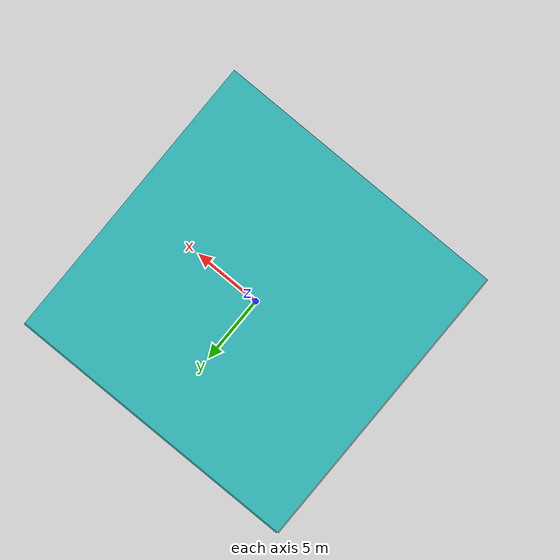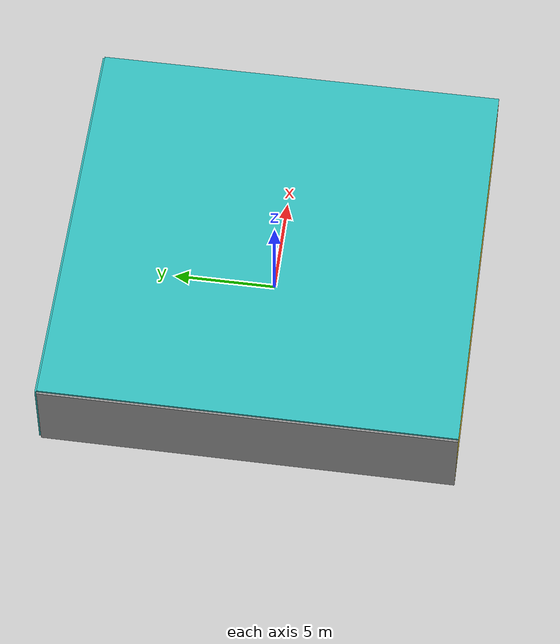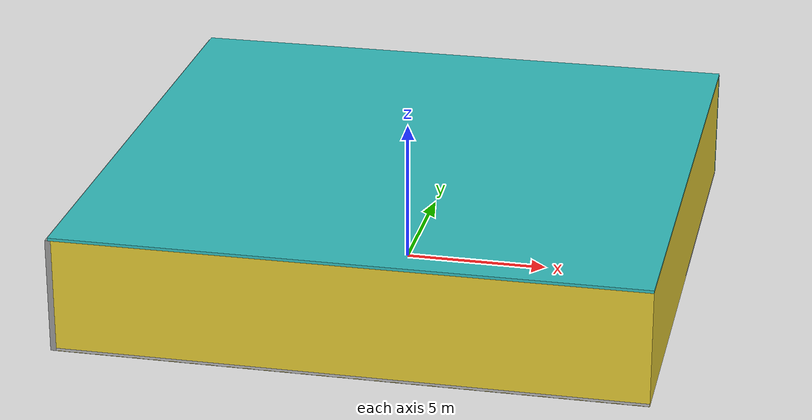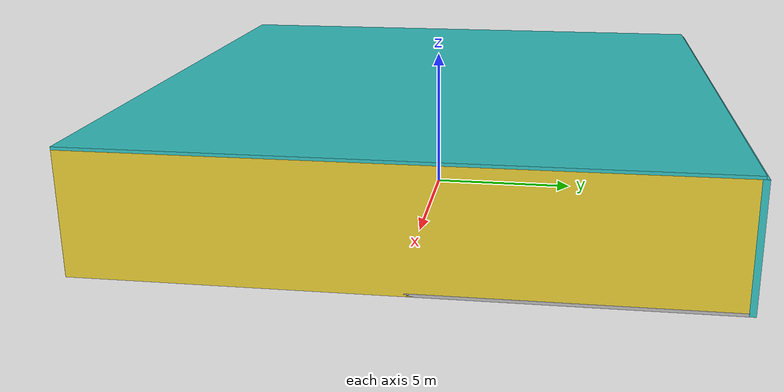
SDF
<sdf version="1.4">
 <world name="default">
  <physics type="ode">
   <max_step_size>0.001</max_step_size>
   <real_time_factor>1</real_time_factor>
   <real_time_update_rate>1000</real_time_update_rate>
   <gravity>0 0 -9.8</gravity>
  </physics>
  <scene><ambient>0.4 0.4 0.4 1</ambient><background>0.7 0.7 0.7 1</background><shadows>1</shadows></scene>
  <model name="Surrounding">
   <static>1</static>
   <link name="Ceiling">
    <collision name="Ceiling_Collision"><geometry><box><size>20 20 0.1</size></box></geometry></collision>
    <visual name="Ceiling_Visual">
     <geometry><box><size>20 20 0.1</size></box></geometry>
     <material>
      <script><uri>file://media/materials/scripts/gazebo.material</uri><name>Gazebo/TurquoiseGlow</name></script>
     </material>
    </visual>
    <pose>0 0 4.05 0 0 0</pose>
   </link>
   <link name="Wall_South">
    <collision name="Wall_South_Collision">
     <geometry><box><size>20 0 4</size></box></geometry>
     <pose>0 0 2 0 -0 0</pose>
    </collision>
    <visual name="Wall_South_Visual">
     <pose>0 0 2 0 -0 0</pose>
     <geometry><box><size>20 0 4</size></box></geometry>
     <material>
      <script><uri>file://media/materials/scripts/gazebo.material</uri><name>Gazebo/ZincYellow</name></script>
     </material>
    </visual>
    <velocity_decay><linear>0</linear><angular>0</angular></velocity_decay>
    <pose>0 -10 0 0 -0 0</pose>
   </link>
   <link name="Wall_East">
    <collision name="Wall_21_Collision">
     <geometry><box><size>20 0 4</size></box></geometry>
     <pose>0 0 2 0 -0 0</pose>
    </collision>
    <visual name="Wall_21_Visual">
     <pose>0 0 2 0 -0 0</pose>
     <geometry><box><size>20 0 4</size></box></geometry>
     <material>
      <script><uri>file://media/materials/scripts/gazebo.material</uri><name>Gazebo/ZincYellow</name></script>
     </material>
    </visual>
    <velocity_decay><linear>0</linear><angular>0</angular></velocity_decay>
    <pose>10 0 0 0 -0 1.5708</pose>
   </link>
   <link name="Wall_North">
    <collision name="Wall_22_Collision">
     <geometry><box><size>20 0.2 4</size></box></geometry>
     <pose>0 0 2 0 -0 0</pose>
    </collision>
    <visual name="Wall_22_Visual">
     <pose>0 0 2 0 -0 0</pose>
     <geometry><box><size>20 0.2 4</size></box></geometry>
     <material>
      <script>
       <uri>file://media/materials/scripts/gazebo.material</uri>
       <name>Gazebo/TurquoiseGlowOutline</name>
      </script>
     </material>
    </visual>
    <velocity_decay><linear>0</linear><angular>0</angular></velocity_decay>
    <pose>0 10 0 0 -0 0</pose>
   </link>
   <link name="Wall_West">
    <collision name="Wall_23_Collision">
     <geometry><box><size>20 0.2 4</size></box></geometry>
     <pose>0 0 2 0 -0 0</pose>
    </collision>
    <visual name="Wall_23_Visual">
     <pose>0 0 2 0 -0 0</pose>
     <geometry><box><size>20 0.2 4</size></box></geometry>
     <material>
      <script><uri>file://media/materials/scripts/gazebo.material</uri><name>Gazebo/Grey</name></script>
     </material>
    </visual>
    <velocity_decay><linear>0</linear><angular>0</angular></velocity_decay>
    <pose>-10 0 0 0 0 -1.5708</pose>
   </link>
   <link name="Ground_link">
    <collision name="collision">
     <pose>0 0 .05 0 -0 0</pose>
     <geometry><box><size>20 20 0.1</size></box></geometry>
    </collision>
    <visual name="visual">
     <pose>0 0 .05 0 -0 0</pose>
     <geometry><box><size>20 20 0.1</size></box></geometry>
     <material>
      <script><uri>file://media/materials/scripts/gazebo.material</uri><name>Gazebo/CloudySky</name></script>
     </material>
    </visual>
   </link>
   <static>1</static>
  </model>
  <spherical_coordinates>
   <surface_model>EARTH_WGS84</surface_model>
   <latitude_deg>0</latitude_deg>
   <longitude_deg>0</longitude_deg>
   <elevation>0</elevation>
   <heading_deg>0</heading_deg>
  </spherical_coordinates>
  <light name="lightball_0" type="diffuse">
   <diffuse>0.8 0.8 0.8 1</diffuse>
   <specular>0.2 0.2 0.2 1</specular>
   <attenuation>
    <range>100</range>
    <constant>0.7</constant>
    <linear>0.01</linear>
    <quadratic>0.001</quadratic>
   </attenuation>
   <direction>-0.5 0.1 -0.9</direction>
   <pose>-8.62418532445 -3.82425668962 1.84392533257 0 0 0</pose>
  </light>
  <light name="lightball_1" type="diffuse">
   <diffuse>0.8 0.8 0.8 1</diffuse>
   <specular>0.2 0.2 0.2 1</specular>
   <attenuation>
    <range>100</range>
    <constant>0.7</constant>
    <linear>0.01</linear>
    <quadratic>0.001</quadratic>
   </attenuation>
   <direction>-0.5 0.1 -0.9</direction>
   <pose>-2.40687125258 7.78112824458 2.88899372151 0 0 0</pose>
  </light>
  <light name="lightball_2" type="diffuse">
   <diffuse>0.8 0.8 0.8 1</diffuse>
   <specular>0.2 0.2 0.2 1</specular>
   <attenuation>
    <range>100</range>
    <constant>0.7</constant>
    <linear>0.01</linear>
    <quadratic>0.001</quadratic>
   </attenuation>
   <direction>-0.5 0.1 -0.9</direction>
   <pose>4.45418792373 -9.41595281531 3.07117712352 0 0 0</pose>
  </light>
  <light name="lightball_3" type="diffuse">
   <diffuse>0.8 0.8 0.8 1</diffuse>
   <specular>0.2 0.2 0.2 1</specular>
   <attenuation>
    <range>100</range>
    <constant>0.7</constant>
    <linear>0.01</linear>
    <quadratic>0.001</quadratic>
   </attenuation>
   <direction>-0.5 0.1 -0.9</direction>
   <pose>-4.29727106942 -1.62804082489 0.79115082749 0 0 0</pose>
  </light>
  <include><uri>model://cabinet</uri><pose>-7.06070632883 -0.821992378565 0 0 0 2.88262800722</pose></include>
  <include>
   <uri>model://textured_shapes</uri>
   <pose>0.748155732351 4.30430382723 0 0 0 1.57542014075</pose>
  </include>
  <include>
   <uri>model://construction_cone</uri>
   <pose>1.35445872087 8.18154791677 0 0 0 1.04330790016</pose>
  </include>
  <include>
   <uri>model://robocup_3Dsim_goal</uri>
   <pose>3.86445284182 -4.04331200432 0 0 0 2.55187021972</pose>
  </include>
  <include><uri>model://cabinet</uri><pose>5.07561325045 4.46403234645 0 0 0 1.5522717664</pose></include>
  <include>
   <uri>model://construction_cone</uri>
   <pose>6.90913375165 -4.49602276051 0 0 0 2.91467438835</pose>
  </include>
  <include><uri>model://table</uri><pose>6.90851730124 7.34013798001 0 0 0 2.76791624955</pose></include>
 </world>
</sdf>

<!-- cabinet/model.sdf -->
<sdf version="1.5">
  <model name="cabinet">
    <static>true</static>
    <link name="cabinet_bottom_plate">
      <inertial>
        <pose>0 0 -1 0 0 0</pose>
        <inertia>
          <ixx>2.050000</ixx>
          <ixy>0</ixy>
          <ixz>0</ixz>
          <iyy>2.050000</iyy>
          <iyz>0</iyz>
          <izz>2.050000</izz>
        </inertia>
        <mass>25.000000</mass>
      </inertial>
      <collision name="cabinet_bottom_plate_geom">
        <pose>0 0 0.010000 0 0 0</pose>
        <geometry>
          <box>
            <size>0.450000 0.450000 0.020000</size>
          </box>
        </geometry>
      </collision>
      <visual name="cabinet_bottom_plate_geom_visual">
        <pose>0 0 0.010000 0 0 0</pose>
        <geometry>
          <box>
            <size>0.450000 0.450000 0.020000</size>
          </box>
        </geometry>
        <material>
          <script>
            <uri>model://media/materials/scripts/gazebo.material</uri>
            <name>Gazebo/Wood</name>
          </script>
        </material>
      </visual>
      <collision name="cabinet_bottom_plate_geom_cabinet_back_plate">
        <pose>0.235000 0 0.510000 0 0 0</pose>
        <geometry>
          <box>
            <size>0.020000 0.450000 1.020000</size>
          </box>
        </geometry>
      </collision>
      <visual name="cabinet_bottom_plate_geom_cabinet_back_plate_visual">
        <pose>0.235000 0 0.510000 0 0 0</pose>
        <geometry>
          <box>
            <size>0.020000 0.450000 1.020000</size>
          </box>
        </geometry>
        <material>
          <script>
            <uri>model://media/materials/scripts/gazebo.material</uri>
            <name>Gazebo/Wood</name>
          </script>
        </material>
      </visual>
      <collision name="cabinet_bottom_plate_geom_cabinet_left_plate">
        <pose>0 0.235000 0.510000 0 0 0</pose>
        <geometry>
          <box>
            <size>0.450000 0.020000 1.020000</size>
          </box>
        </geometry>
      </collision>
      <visual name="cabinet_bottom_plate_geom_cabinet_left_plate_visual">
        <pose>0 0.235000 0.510000 0 0 0</pose>
        <geometry>
          <box>
            <size>0.450000 0.020000 1.020000</size>
          </box>
        </geometry>
        <material>
          <script>
            <uri>model://media/materials/scripts/gazebo.material</uri>
            <name>Gazebo/Wood</name>
          </script>
        </material>
      </visual>
      <collision name="cabinet_bottom_plate_geom_cabinet_middle_plate">
        <pose>0 0 0.510000 0 0 0</pose>
        <geometry>
          <box>
            <size>0.450000 0.450000 0.020000</size>
          </box>
        </geometry>
      </collision>
      <visual name="cabinet_bottom_plate_geom_cabinet_middle_plate_visual">
        <pose>0 0 0.510000 0 0 0</pose>
        <geometry>
          <box>
            <size>0.450000 0.450000 0.020000</size>
          </box>
        </geometry>
        <material>
          <script>
            <uri>model://media/materials/scripts/gazebo.material</uri>
            <name>Gazebo/Wood</name>
          </script>
        </material>
      </visual>
      <collision name="cabinet_bottom_plate_geom_cabinet_right_plate">
        <pose>0 -0.235000 0.510000 0 0 0</pose>
        <geometry>
          <box>
            <size>0.450000 0.020000 1.020000</size>
          </box>
        </geometry>
      </collision>
      <visual name="cabinet_bottom_plate_geom_cabinet_right_plate_visual">
        <pose>0 -0.235000 0.510000 0 0 0</pose>
        <geometry>
          <box>
            <size>0.450000 0.020000 1.020000</size>
          </box>
        </geometry>
        <material>
          <script>
            <uri>model://media/materials/scripts/gazebo.material</uri>
            <name>Gazebo/Wood</name>
          </script>
        </material>
      </visual>
      <collision name="cabinet_bottom_plate_geom_cabinet_top_plate">
        <pose>0 0 1.010000 0 0 0</pose>
        <geometry>
          <box>
            <size>0.450000 0.450000 0.020000</size>
          </box>
        </geometry>
      </collision>
      <visual name="cabinet_bottom_plate_geom_cabinet_top_plate_visual">
        <pose>0 0 1.010000 0 0 0</pose>
        <geometry>
          <box>
            <size>0.450000 0.450000 0.020000</size>
          </box>
        </geometry>
        <material>
          <script>
            <uri>model://media/materials/scripts/gazebo.material</uri>
            <name>Gazebo/Wood</name>
          </script>
        </material>
      </visual>
    </link>
  </model>
</sdf>

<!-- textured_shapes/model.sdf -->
<sdf version="1.6">
  <model name="textured_shapes">
    <pose>0 0 0.5 0 0 0</pose>
    <link name="box">
      <pose>0 -1.5 0 0 0 0</pose>
      <collision name="collision">
        <geometry>
          <box>
            <size>1 1 1</size>
          </box>
        </geometry>
      </collision>
      <visual name="visual">
        <geometry>
          <box>
            <size>1 1 1</size>
          </box>
        </geometry>
        <material>
          <script>
            <uri>model://../model_source/models/textured_shapes/materials/scripts</uri>
            <uri>model://../model_source/models/textured_shapes/materials/textures</uri>
            <name>TexturedShape/Squares</name>
          </script>
        </material>
      </visual>
    </link>
    <link name="sphere">
      <collision name="collision">
        <geometry>
          <sphere>
            <radius>0.5</radius>
          </sphere>
        </geometry>
      </collision>
      <visual name="visual">
        <geometry>
          <sphere>
            <radius>0.5</radius>
          </sphere>
        </geometry>
        <material>
          <script>
            <uri>model://../model_source/models/textured_shapes/materials/scripts</uri>
            <uri>model://../model_source/models/textured_shapes/materials/textures</uri>
            <name>TexturedShape/Squares</name>
          </script>
        </material>
      </visual>
    </link>
    <link name="cylinder">
      <pose>0 1.5 0 0 0 0</pose>
      <collision name="collision">
        <geometry>
          <cylinder>
            <radius>0.5</radius>
            <length>1</length>
          </cylinder>
        </geometry>
      </collision>
      <visual name="visual">
        <geometry>
          <cylinder>
            <radius>0.5</radius>
            <length>1</length>
          </cylinder>
        </geometry>
        <material>
          <script>
            <uri>model://../model_source/models/textured_shapes/materials/scripts</uri>
            <uri>model://../model_source/models/textured_shapes/materials/textures</uri>
            <name>TexturedShape/Squares</name>
          </script>
        </material>
      </visual>
    </link>
  </model>
</sdf>

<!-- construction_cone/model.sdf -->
<sdf version="1.5">
  <model name="Construction Cone">
    <link name="link">
      <collision name="collision">
        <geometry>
          <mesh>
            <scale>10 10 10</scale>
            <uri>file://isr-testbed/construction_cone/meshes/construction_cone.dae</uri>
          </mesh>
        </geometry>
      </collision>
      <visual name="visual">
        <geometry>
          <mesh>
            <scale>10 10 10</scale>
            <uri>file://isr-testbed/construction_cone/meshes/construction_cone.dae</uri>
          </mesh>
        </geometry>
      </visual>
    </link>
  </model>
</sdf>

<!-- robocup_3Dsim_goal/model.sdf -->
<sdf version="1.5">
  <model name="robocup_3d_goal">
    <static>true</static>
    <link name="left_post">
      <pose>0 1.05 0.45 0 0 0</pose>
      <collision name="collision">
        <geometry>
          <cylinder>
            <radius>0.05</radius>
            <length>0.9</length>
          </cylinder>
        </geometry>
      </collision>
      <visual name="visual">
        <geometry>
          <cylinder>
            <radius>0.05</radius>
            <length>0.9</length>
          </cylinder>
        </geometry>
        <material>
          <script>
            <uri>file://media/materials/scripts/gazebo.material</uri>
            <name>Gazebo/ZincYellow</name>
          </script>
        </material>
      </visual>
    </link>
    <link name="left_support_horiz_lower">
      <pose>0.30 1.05 0.01 0 0 0</pose>
      <collision name="collision">
        <geometry>
          <box>
            <size>0.50 0.02 0.02</size>
          </box>
        </geometry>
      </collision>
      <visual name="visual">
        <geometry>
          <box>
            <size>0.50 0.02 0.02</size>
          </box>
        </geometry>
        <material>
          <script>
            <uri>file://media/materials/scripts/gazebo.material</uri>
            <name>Gazebo/White</name>
          </script>
        </material>
      </visual>
    </link>
    <link name="left_support_horiz_upper">
      <pose>0.30 1.05 0.79 0 0 0</pose>
      <collision name="collision">
        <geometry>
          <box>
            <size>0.50 0.02 0.02</size>
          </box>
        </geometry>
      </collision>
      <visual name="visual">
        <geometry>
          <box>
            <size>0.50 0.02 0.02</size>
          </box>
        </geometry>
        <material>
          <script>
            <uri>file://media/materials/scripts/gazebo.material</uri>
            <name>Gazebo/White</name>
          </script>
        </material>
      </visual>
    </link>
    <link name="left_support_vertical">
      <pose>0.56 1.05 0.4 0 1.5708 0</pose>
      <collision name="collision">
        <geometry>
          <box>
            <size>0.80 0.02 0.02</size>
          </box>
        </geometry>
      </collision>
      <visual name="visual">
        <geometry>
          <box>
            <size>0.80 0.02 0.02</size>
          </box>
        </geometry>
        <material>
          <script>
            <uri>file://media/materials/scripts/gazebo.material</uri>
            <name>Gazebo/White</name>
          </script>
        </material>
      </visual>
    </link>
    <link name="right_support_horiz_lower">
      <pose>0.30 -1.05 0.01 0 0 0</pose>
      <collision name="collision">
        <geometry>
          <box>
            <size>0.50 0.02 0.02</size>
          </box>
        </geometry>
      </collision>
      <visual name="visual">
        <geometry>
          <box>
            <size>0.50 0.02 0.02</size>
          </box>
        </geometry>
        <material>
          <script>
            <uri>file://media/materials/scripts/gazebo.material</uri>
            <name>Gazebo/White</name>
          </script>
        </material>
      </visual>
    </link>
    <link name="right_support_horiz_upper">
      <pose>0.30 -1.05 0.79 0 0 0</pose>
      <collision name="collision">
        <geometry>
          <box>
            <size>0.50 0.02 0.02</size>
          </box>
        </geometry>
      </collision>
      <visual name="visual">
        <geometry>
          <box>
            <size>0.50 0.02 0.02</size>
          </box>
        </geometry>
        <material>
          <script>
            <uri>file://media/materials/scripts/gazebo.material</uri>
            <name>Gazebo/White</name>
          </script>
        </material>
      </visual>
    </link>
    <link name="right_support_vertical">
      <pose>0.56 -1.05 0.4 0 1.5708 0</pose>
      <collision name="collision">
        <geometry>
          <box>
            <size>0.80 0.02 0.02</size>
          </box>
        </geometry>
      </collision>
      <visual name="visual">
        <geometry>
          <box>
            <size>0.80 0.02 0.02</size>
          </box>
        </geometry>
        <material>
          <script>
            <uri>file://media/materials/scripts/gazebo.material</uri>
            <name>Gazebo/White</name>
          </script>
        </material>
      </visual>
    </link>
    <link name="center_support_horiz_lower">
      <pose>0.56 0 0.01 0 1.5708 0</pose>
      <collision name="collision">
        <geometry>
          <box>
            <size>0.02 2.08 0.02</size>
          </box>
        </geometry>
      </collision>
      <visual name="visual">
        <geometry>
          <box>
            <size>0.02 2.08 0.02</size>
          </box>
        </geometry>
        <material>
          <script>
            <uri>file://media/materials/scripts/gazebo.material</uri>
            <name>Gazebo/White</name>
          </script>
        </material>
      </visual>
    </link>
    <link name="center_support_horiz_upper">
      <pose>0.56 0 0.79 0 1.5708 0</pose>
      <collision name="collision">
        <geometry>
          <box>
            <size>0.02 2.08 0.02</size>
          </box>
        </geometry>
      </collision>
      <visual name="visual">
        <geometry>
          <box>
            <size>0.02 2.08 0.02</size>
          </box>
        </geometry>
        <material>
          <script>
            <uri>file://media/materials/scripts/gazebo.material</uri>
            <name>Gazebo/White</name>
          </script>
        </material>
      </visual>
    </link>
    <link name="right_post">
      <pose>0 -1.05 0.45 0 0 0</pose>
      <collision name="collision">
        <geometry>
          <cylinder>
            <radius>0.05</radius>
            <length>0.9</length>
          </cylinder>
        </geometry>
      </collision>
      <visual name="visual">
        <geometry>
          <cylinder>
            <radius>0.05</radius>
            <length>0.9</length>
          </cylinder>
        </geometry>
        <material>
          <script>
            <uri>file://media/materials/scripts/gazebo.material</uri>
            <name>Gazebo/ZincYellow</name>
          </script>
        </material>
      </visual>
    </link>
    <link name="crossbar">
      <pose>0 0 0.85 1.57 1.57 0</pose>
      <collision name="collision">
        <geometry>
          <cylinder>
            <radius>0.05</radius>
            <length>2.0</length>
          </cylinder>
        </geometry>
      </collision>
      <visual name="visual">
        <geometry>
          <cylinder>
            <radius>0.05</radius>
            <length>2.0</length>
          </cylinder>
        </geometry>
        <material>
          <script>
            <uri>file://media/materials/scripts/gazebo.material</uri>
            <name>Gazebo/ZincYellow</name>
          </script>
        </material>
      </visual>
    </link>
    <link name="center_net">
      <pose>0.56 0 0.40 0 0 0</pose>
      <collision name="collision">
        <geometry>
          <box>
            <size>0.01 2.1 0.80</size>
          </box>
        </geometry>
      </collision>
      <visual name="visual">
        <geometry>
          <box>
            <size>0.01 2.1 0.80</size>
          </box>
        </geometry>
        <material>
          <script>
            <uri>model://../model_source/models/robocup09_spl_field/materials/scripts/</uri>
            <uri>model://../model_source/models/robocup09_spl_field/materials/textures/</uri>
            <name>RoboCup/Net</name>
          </script>
        </material>
      </visual>
    </link>
    <link name="left_net">
      <pose>0.30 1.05 0.40 0 0 0</pose>
      <collision name="collision">
        <geometry>
          <box>
            <size>0.50 0.01 0.76</size>
          </box>
        </geometry>
      </collision>
      <visual name="visual">
        <geometry>
          <box>
            <size>0.50 0.01 0.76</size>
          </box>
        </geometry>
        <material>
          <script>
            <uri>model://../model_source/models/robocup09_spl_field/materials/scripts/</uri>
            <uri>model://../model_source/models/robocup09_spl_field/materials/textures/</uri>
            <name>RoboCup/Net</name>
          </script>
        </material>
      </visual>
    </link>
    <link name="right_net">
      <pose>0.30 -1.05 0.40 0 0 0</pose>
      <collision name="collision">
        <geometry>
          <box>
            <size>0.50 0.01 0.76</size>
          </box>
        </geometry>
      </collision>
      <visual name="visual">
        <geometry>
          <box>
            <size>0.50 0.01 0.76</size>
          </box>
        </geometry>
        <material>
          <script>
            <uri>model://../model_source/models/robocup09_spl_field/materials/scripts/</uri>
            <uri>model://../model_source/models/robocup09_spl_field/materials/textures/</uri>
            <name>RoboCup/Net</name>
          </script>
        </material>
      </visual>
    </link>
  </model>
</sdf>

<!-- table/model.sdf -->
<sdf version="1.5">
  <model name="table">
    <static>true</static>
    <link name="link">
      <collision name="surface">
        <pose>0 0 1.0 0 0 0</pose>
        <geometry>
          <box>
            <size>1.5 0.8 0.03</size>
          </box>
        </geometry>
        <surface>
          <friction>
            <ode>
              <mu>0.6</mu>
              <mu2>0.6</mu2>
            </ode>
          </friction>
        </surface>
      </collision>
      <visual name="visual1">
        <pose>0 0 1.0 0 0 0</pose>
        <geometry>
          <box>
            <size>1.5 0.8 0.03</size>
          </box>
        </geometry>
        <material>
          <script>
            <uri>model://media/materials/scripts/gazebo.material</uri>
            <name>Gazebo/Wood</name>
          </script>
        </material>
      </visual>
      <collision name="front_left_leg">
        <pose>0.68 0.38 0.5 0 0 0</pose>
        <geometry>
          <cylinder>
            <radius>0.02</radius>
            <length>1.0</length>
          </cylinder>
        </geometry>
      </collision>
      <visual name="front_left_leg">
        <pose>0.68 0.38 0.5 0 0 0</pose>
        <geometry>
          <cylinder>
            <radius>0.02</radius>
            <length>1.0</length>
          </cylinder>
        </geometry>
        <material>
          <script>
            <uri>model://media/materials/scripts/gazebo.material</uri>
            <name>Gazebo/Grey</name>
          </script>
        </material>
      </visual>
      <collision name="front_right_leg">
        <pose>0.68 -0.38 0.5 0 0 0</pose>
        <geometry>
          <cylinder>
            <radius>0.02</radius>
            <length>1.0</length>
          </cylinder>
        </geometry>
      </collision>
      <visual name="front_right_leg">
        <pose>0.68 -0.38 0.5 0 0 0</pose>
        <geometry>
          <cylinder>
            <radius>0.02</radius>
            <length>1.0</length>
          </cylinder>
        </geometry>
        <material>
          <script>
            <uri>model://media/materials/scripts/gazebo.material</uri>
            <name>Gazebo/Grey</name>
          </script>
        </material>
      </visual>
      <collision name="back_right_leg">
        <pose>-0.68 -0.38 0.5 0 0 0</pose>
        <geometry>
          <cylinder>
            <radius>0.02</radius>
            <length>1.0</length>
          </cylinder>
        </geometry>
      </collision>
      <visual name="back_right_leg">
        <pose>-0.68 -0.38 0.5 0 0 0</pose>
        <geometry>
          <cylinder>
            <radius>0.02</radius>
            <length>1.0</length>
          </cylinder>
        </geometry>
        <material>
          <script>
            <uri>model://media/materials/scripts/gazebo.material</uri>
            <name>Gazebo/Grey</name>
          </script>
        </material>
      </visual>
      <collision name="back_left_leg">
        <pose>-0.68 0.38 0.5 0 0 0</pose>
        <geometry>
          <cylinder>
            <radius>0.02</radius>
            <length>1.0</length>
          </cylinder>
        </geometry>
      </collision>
      <visual name="back_left_leg">
        <pose>-0.68 0.38 0.5 0 0 0</pose>
        <geometry>
          <cylinder>
            <radius>0.02</radius>
            <length>1.0</length>
          </cylinder>
        </geometry>
        <material>
          <script>
            <uri>model://media/materials/scripts/gazebo.material</uri>
            <name>Gazebo/Grey</name>
          </script>
        </material>
      </visual>
    </link>
  </model>
</sdf>
